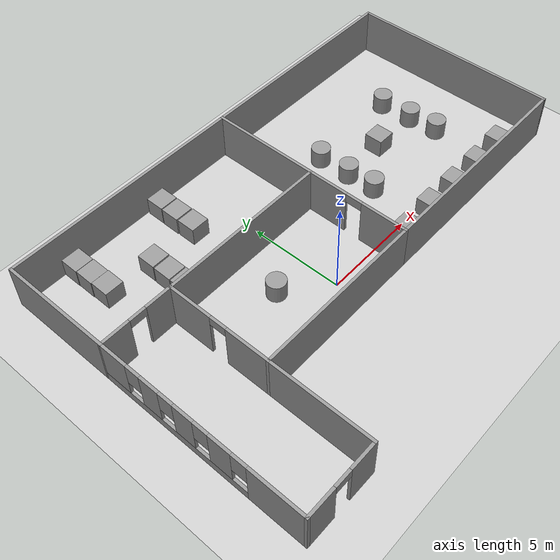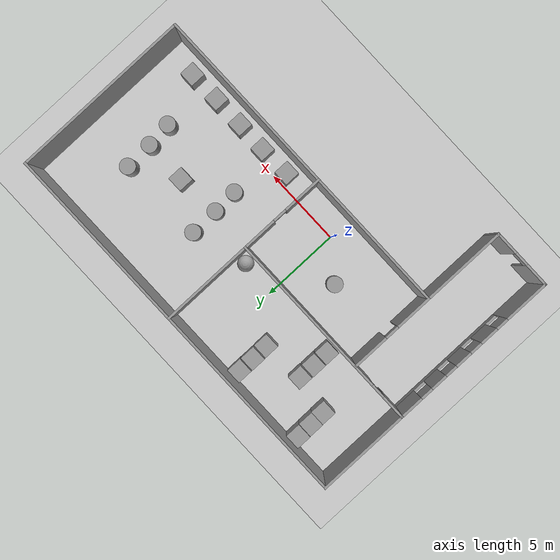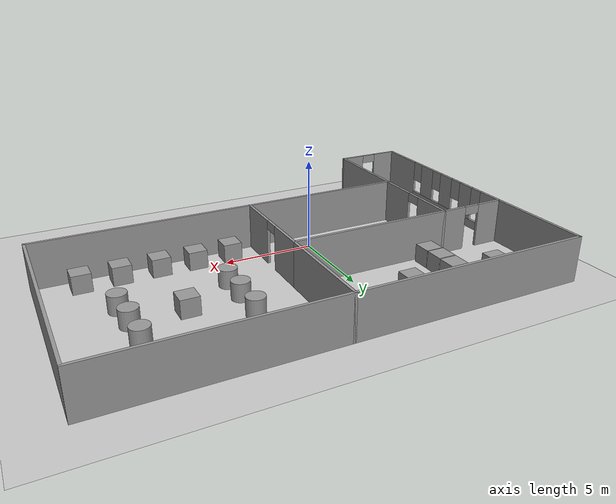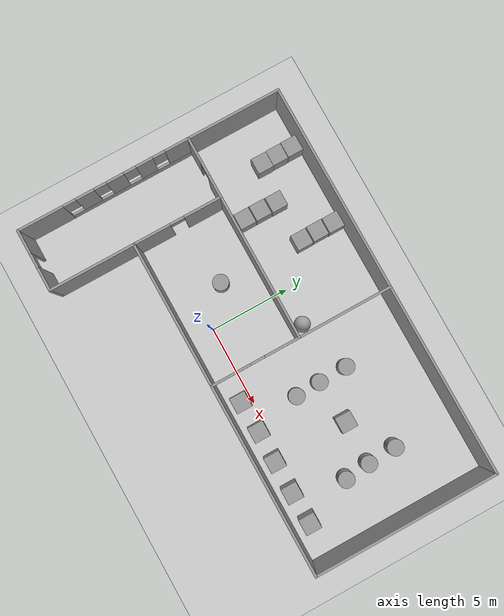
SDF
<sdf version="1.7">
 <world name="default">
  <light name="sun" type="directional">
   <pose>0 0 10 0 -0 0</pose>
   <diffuse>0.8 0.8 0.8 1</diffuse>
   <specular>0.2 0.2 0.2 1</specular>
   <attenuation>
    <range>1000</range>
    <constant>0.9</constant>
    <linear>0.01</linear>
    <quadratic>0.001</quadratic>
   </attenuation>
   <direction>-0.5 0.1 -0.9</direction>
   <spot><inner_angle>0</inner_angle><outer_angle>0</outer_angle><falloff>0</falloff></spot>
  </light>
  <model name="ground_plane">
   <static>1</static>
   <link name="link">
    <collision name="collision">
     <geometry><plane><normal>0 0 1</normal><size>100 100</size></plane></geometry>
     <surface>
      <contact><collide_bitmask>65535</collide_bitmask></contact>
      <friction><ode><mu>100</mu><mu2>50</mu2></ode></friction>
     </surface>
    </collision>
    <visual name="visual">
     <cast_shadows>0</cast_shadows>
     <geometry><plane><normal>0 0 1</normal><size>100 100</size></plane></geometry>
     <material>
      <script><uri>file://media/materials/scripts/gazebo.material</uri><name>Gazebo/Grey</name></script>
     </material>
    </visual>
   </link>
  </model>
  <gravity>0 0 -9.8</gravity>
  <magnetic_field>6e-06 2.3e-05 -4.2e-05</magnetic_field>
  <atmosphere type="adiabatic"/>
  <physics type="ode">
   <max_step_size>0.001</max_step_size>
   <real_time_factor>1</real_time_factor>
   <real_time_update_rate>1000</real_time_update_rate>
  </physics>
  <scene><ambient>0.4 0.4 0.4 1</ambient><background>0.7 0.7 0.7 1</background><shadows>1</shadows></scene>
  <spherical_coordinates>
   <surface_model>EARTH_WGS84</surface_model>
   <latitude_deg>0</latitude_deg>
   <longitude_deg>0</longitude_deg>
   <elevation>0</elevation>
   <heading_deg>0</heading_deg>
  </spherical_coordinates>
  <model name="house">
   <pose>2.35115 1.53042 0 0 -0 0</pose>
   <link name="Wall_0">
    <pose>-8.55 -0.25 0 0 -0 1.5708</pose>
    <visual name="Wall_0_Visual_0">
     <pose>-1.67204 0 1.25 0 -0 0</pose>
     <geometry><box><size>2.40592 0.15 2.5</size></box></geometry>
     <material>
      <script><uri>file://media/materials/scripts/gazebo.material</uri><name>Gazebo/Grey</name></script>
      <ambient>1 1 1 1</ambient>
     </material>
     <meta><layer>0</layer></meta>
    </visual>
    <collision name="Wall_0_Collision_0">
     <geometry><box><size>2.40592 0.15 2.5</size></box></geometry>
     <pose>-1.67204 0 1.25 0 -0 0</pose>
    </collision>
    <visual name="Wall_0_Visual_1">
     <pose>1.65296 0 1.25 0 -0 0</pose>
     <geometry><box><size>2.44408 0.15 2.5</size></box></geometry>
     <material>
      <script><uri>file://media/materials/scripts/gazebo.material</uri><name>Gazebo/Grey</name></script>
      <ambient>1 1 1 1</ambient>
     </material>
     <meta><layer>0</layer></meta>
    </visual>
    <collision name="Wall_0_Collision_1">
     <geometry><box><size>2.44408 0.15 2.5</size></box></geometry>
     <pose>1.65296 0 1.25 0 -0 0</pose>
    </collision>
    <visual name="Wall_0_Visual_2">
     <pose>-0.01908 0 2.25 0 -0 0</pose>
     <geometry><box><size>0.9 0.15 0.5</size></box></geometry>
     <material>
      <script><uri>file://media/materials/scripts/gazebo.material</uri><name>Gazebo/Grey</name></script>
      <ambient>1 1 1 1</ambient>
     </material>
     <meta><layer>0</layer></meta>
    </visual>
    <collision name="Wall_0_Collision_2">
     <geometry><box><size>0.9 0.15 0.5</size></box></geometry>
     <pose>-0.01908 0 2.25 0 -0 0</pose>
    </collision>
   </link>
   <link name="Wall_1">
    <collision name="Wall_1_Collision">
     <geometry><box><size>9.25 0.15 2.5</size></box></geometry>
     <pose>0 0 1.25 0 -0 0</pose>
    </collision>
    <visual name="Wall_1_Visual">
     <pose>0 0 1.25 0 -0 0</pose>
     <geometry><box><size>9.25 0.15 2.5</size></box></geometry>
     <material>
      <script><uri>file://media/materials/scripts/gazebo.material</uri><name>Gazebo/Grey</name></script>
      <ambient>1 1 1 1</ambient>
     </material>
     <meta><layer>0</layer></meta>
    </visual>
    <pose>-4 2.55 0 0 -0 0</pose>
   </link>
   <link name="Wall_11">
    <pose>-10.475 2.55 0 0 -0 3.14159</pose>
    <visual name="Wall_11_Visual_0">
     <pose>-1.25059 0 1.25 0 -0 0</pose>
     <geometry><box><size>1.49882 0.15 2.5</size></box></geometry>
     <material>
      <script><uri>file://media/materials/scripts/gazebo.material</uri><name>Gazebo/Grey</name></script>
      <ambient>1 1 1 1</ambient>
     </material>
     <meta><layer>0</layer></meta>
    </visual>
    <collision name="Wall_11_Collision_0">
     <geometry><box><size>1.49882 0.15 2.5</size></box></geometry>
     <pose>-1.25059 0 1.25 0 -0 0</pose>
    </collision>
    <visual name="Wall_11_Visual_1">
     <pose>1.19941 0 1.25 0 -0 0</pose>
     <geometry><box><size>1.60118 0.15 2.5</size></box></geometry>
     <material>
      <script><uri>file://media/materials/scripts/gazebo.material</uri><name>Gazebo/Grey</name></script>
      <ambient>1 1 1 1</ambient>
     </material>
     <meta><layer>0</layer></meta>
    </visual>
    <collision name="Wall_11_Collision_1">
     <geometry><box><size>1.60118 0.15 2.5</size></box></geometry>
     <pose>1.19941 0 1.25 0 -0 0</pose>
    </collision>
    <visual name="Wall_11_Visual_2">
     <pose>-0.051178 0 2.25 0 -0 0</pose>
     <geometry><box><size>0.9 0.15 0.5</size></box></geometry>
     <material>
      <script><uri>file://media/materials/scripts/gazebo.material</uri><name>Gazebo/Grey</name></script>
      <ambient>1 1 1 1</ambient>
     </material>
     <meta><layer>0</layer></meta>
    </visual>
    <collision name="Wall_11_Collision_2">
     <geometry><box><size>0.9 0.15 0.5</size></box></geometry>
     <pose>-0.051178 0 2.25 0 -0 0</pose>
    </collision>
   </link>
   <link name="Wall_14">
    <collision name="Wall_14_Collision">
     <geometry><box><size>6 0.15 2.5</size></box></geometry>
     <pose>0 0 1.25 0 -0 0</pose>
    </collision>
    <visual name="Wall_14_Visual">
     <pose>0 0 1.25 0 -0 0</pose>
     <geometry><box><size>6 0.15 2.5</size></box></geometry>
     <material>
      <script><uri>file://media/materials/scripts/gazebo.material</uri><name>Gazebo/Grey</name></script>
      <ambient>1 1 1 1</ambient>
     </material>
     <meta><layer>0</layer></meta>
    </visual>
    <pose>-12.4 5.475 0 0 -0 1.5708</pose>
   </link>
   <link name="Wall_17">
    <collision name="Wall_17_Collision">
     <geometry><box><size>6 0.15 2.5</size></box></geometry>
     <pose>0 0 1.25 0 -0 0</pose>
    </collision>
    <visual name="Wall_17_Visual">
     <pose>0 0 1.25 0 -0 0</pose>
     <geometry><box><size>6 0.15 2.5</size></box></geometry>
     <material>
      <script><uri>file://media/materials/scripts/gazebo.material</uri><name>Gazebo/Grey</name></script>
      <ambient>1 1 1 1</ambient>
     </material>
     <meta><layer>0</layer></meta>
    </visual>
    <pose>0.55 5.475 0 0 -0 1.5708</pose>
   </link>
   <link name="Wall_18">
    <collision name="Wall_18_Collision">
     <geometry><box><size>13.1 0.15 2.5</size></box></geometry>
     <pose>0 0 1.25 0 -0 0</pose>
    </collision>
    <visual name="Wall_18_Visual">
     <pose>0 0 1.25 0 -0 0</pose>
     <geometry><box><size>13.1 0.15 2.5</size></box></geometry>
     <material>
      <script><uri>file://media/materials/scripts/gazebo.material</uri><name>Gazebo/Grey</name></script>
      <ambient>1 1 1 1</ambient>
     </material>
     <meta><layer>0</layer></meta>
    </visual>
    <pose>-5.925 8.4 0 0 -0 3.14159</pose>
   </link>
   <link name="Wall_2">
    <pose>0.55 -0.25 0 0 -0 -1.5708</pose>
    <visual name="Wall_2_Visual_0">
     <pose>-1.73443 0 1.25 0 -0 0</pose>
     <geometry><box><size>2.28113 0.15 2.5</size></box></geometry>
     <material>
      <script><uri>file://media/materials/scripts/gazebo.material</uri><name>Gazebo/Grey</name></script>
      <ambient>1 1 1 1</ambient>
     </material>
     <meta><layer>0</layer></meta>
    </visual>
    <collision name="Wall_2_Collision_0">
     <geometry><box><size>2.28113 0.15 2.5</size></box></geometry>
     <pose>-1.73443 0 1.25 0 -0 0</pose>
    </collision>
    <visual name="Wall_2_Visual_1">
     <pose>1.59057 0 1.25 0 -0 0</pose>
     <geometry><box><size>2.56887 0.15 2.5</size></box></geometry>
     <material>
      <script><uri>file://media/materials/scripts/gazebo.material</uri><name>Gazebo/Grey</name></script>
      <ambient>1 1 1 1</ambient>
     </material>
     <meta><layer>0</layer></meta>
    </visual>
    <collision name="Wall_2_Collision_1">
     <geometry><box><size>2.56887 0.15 2.5</size></box></geometry>
     <pose>1.59057 0 1.25 0 -0 0</pose>
    </collision>
    <visual name="Wall_2_Visual_2">
     <pose>-0.143869 0 2.25 0 -0 0</pose>
     <geometry><box><size>0.9 0.15 0.5</size></box></geometry>
     <material>
      <script><uri>file://media/materials/scripts/gazebo.material</uri><name>Gazebo/Grey</name></script>
      <ambient>1 1 1 1</ambient>
     </material>
     <meta><layer>0</layer></meta>
    </visual>
    <collision name="Wall_2_Collision_2">
     <geometry><box><size>0.9 0.15 0.5</size></box></geometry>
     <pose>-0.143869 0 2.25 0 -0 0</pose>
    </collision>
   </link>
   <link name="Wall_20">
    <collision name="Wall_20_Collision">
     <geometry><box><size>12 0.15 2.5</size></box></geometry>
     <pose>0 0 1.25 0 -0 0</pose>
    </collision>
    <visual name="Wall_20_Visual">
     <pose>0 0 1.25 0 -0 0</pose>
     <geometry><box><size>12 0.15 2.5</size></box></geometry>
     <material>
      <script><uri>file://media/materials/scripts/gazebo.material</uri><name>Gazebo/Grey</name></script>
      <ambient>1 1 1 1</ambient>
     </material>
     <meta><layer>0</layer></meta>
    </visual>
    <pose>6.475 8.4 0 0 -0 0</pose>
   </link>
   <link name="Wall_23">
    <collision name="Wall_23_Collision">
     <geometry><box><size>12 0.15 2.5</size></box></geometry>
     <pose>0 0 1.25 0 -0 0</pose>
    </collision>
    <visual name="Wall_23_Visual">
     <pose>0 0 1.25 0 -0 0</pose>
     <geometry><box><size>12 0.15 2.5</size></box></geometry>
     <material>
      <script><uri>file://media/materials/scripts/gazebo.material</uri><name>Gazebo/Grey</name></script>
      <ambient>1 1 1 1</ambient>
     </material>
     <meta><layer>0</layer></meta>
    </visual>
    <pose>6.475 -3.05 0 0 -0 0</pose>
   </link>
   <link name="Wall_24">
    <collision name="Wall_24_Collision">
     <geometry><box><size>11.5 0.15 2.5</size></box></geometry>
     <pose>0 0 1.25 0 -0 0</pose>
    </collision>
    <visual name="Wall_24_Visual">
     <pose>0 0 1.25 0 -0 0</pose>
     <geometry><box><size>11.5 0.15 2.5</size></box></geometry>
     <material>
      <script><uri>file://media/materials/scripts/gazebo.material</uri><name>Gazebo/Grey</name></script>
      <ambient>1 1 1 1</ambient>
     </material>
     <meta><layer>0</layer></meta>
    </visual>
    <pose>12.4 2.625 0 0 -0 1.5708</pose>
   </link>
   <link name="Wall_3">
    <collision name="Wall_3_Collision">
     <geometry><box><size>9.25 0.15 2.5</size></box></geometry>
     <pose>0 0 1.25 0 -0 0</pose>
    </collision>
    <visual name="Wall_3_Visual">
     <pose>0 0 1.25 0 -0 0</pose>
     <geometry><box><size>9.25 0.15 2.5</size></box></geometry>
     <material>
      <script><uri>file://media/materials/scripts/gazebo.material</uri><name>Gazebo/Grey</name></script>
      <ambient>1 1 1 1</ambient>
     </material>
     <meta><layer>0</layer></meta>
    </visual>
    <pose>-4 -3.05 0 0 -0 3.14159</pose>
   </link>
   <link name="Wall_6">
    <collision name="Wall_6_Collision">
     <geometry><box><size>5.5 0.15 2.5</size></box></geometry>
     <pose>0 0 1.25 0 -0 0</pose>
    </collision>
    <visual name="Wall_6_Visual">
     <pose>0 0 1.25 0 -0 0</pose>
     <geometry><box><size>5.5 0.15 2.5</size></box></geometry>
     <material>
      <script><uri>file://media/materials/scripts/gazebo.material</uri><name>Gazebo/Grey</name></script>
      <ambient>1 1 1 1</ambient>
     </material>
     <meta><layer>0</layer></meta>
    </visual>
    <pose>-8.55 -5.725 0 0 -0 -1.5708</pose>
   </link>
   <link name="Wall_7">
    <pose>-10.475 -8.4 0 0 -0 3.14159</pose>
    <visual name="Wall_7_Visual_0">
     <pose>-1.23824 0 1.25 0 -0 0</pose>
     <geometry><box><size>1.52352 0.15 2.5</size></box></geometry>
     <material>
      <script><uri>file://media/materials/scripts/gazebo.material</uri><name>Gazebo/Grey</name></script>
      <ambient>1 1 1 1</ambient>
     </material>
     <meta><layer>0</layer></meta>
    </visual>
    <collision name="Wall_7_Collision_0">
     <geometry><box><size>1.52352 0.15 2.5</size></box></geometry>
     <pose>-1.23824 0 1.25 0 -0 0</pose>
    </collision>
    <visual name="Wall_7_Visual_1">
     <pose>1.21176 0 1.25 0 -0 0</pose>
     <geometry><box><size>1.57648 0.15 2.5</size></box></geometry>
     <material>
      <script><uri>file://media/materials/scripts/gazebo.material</uri><name>Gazebo/Grey</name></script>
      <ambient>1 1 1 1</ambient>
     </material>
     <meta><layer>0</layer></meta>
    </visual>
    <collision name="Wall_7_Collision_1">
     <geometry><box><size>1.57648 0.15 2.5</size></box></geometry>
     <pose>1.21176 0 1.25 0 -0 0</pose>
    </collision>
    <visual name="Wall_7_Visual_2">
     <pose>-0.026484 0 2.25 0 -0 0</pose>
     <geometry><box><size>0.9 0.15 0.5</size></box></geometry>
     <material>
      <script><uri>file://media/materials/scripts/gazebo.material</uri><name>Gazebo/Grey</name></script>
      <ambient>1 1 1 1</ambient>
     </material>
     <meta><layer>0</layer></meta>
    </visual>
    <collision name="Wall_7_Collision_2">
     <geometry><box><size>0.9 0.15 0.5</size></box></geometry>
     <pose>-0.026484 0 2.25 0 -0 0</pose>
    </collision>
   </link>
   <link name="Wall_9">
    <pose>-12.4 -2.975 0 0 -0 1.5708</pose>
    <visual name="Wall_9_Visual_0">
     <pose>-4.02416 0 1.25 0 -0 0</pose>
     <geometry><box><size>2.95168 0.15 2.5</size></box></geometry>
     <material>
      <script><uri>file://media/materials/scripts/gazebo.material</uri><name>Gazebo/Grey</name></script>
      <ambient>1 1 1 1</ambient>
     </material>
     <meta><layer>0</layer></meta>
    </visual>
    <collision name="Wall_9_Collision_0">
     <geometry><box><size>2.95168 0.15 2.5</size></box></geometry>
     <pose>-4.02416 0 1.25 0 -0 0</pose>
    </collision>
    <visual name="Wall_9_Visual_1">
     <pose>1.47584 0 0.25 0 -0 0</pose>
     <geometry><box><size>8.04832 0.15 0.5</size></box></geometry>
     <material>
      <script><uri>file://media/materials/scripts/gazebo.material</uri><name>Gazebo/Grey</name></script>
      <ambient>1 1 1 1</ambient>
     </material>
     <meta><layer>0</layer></meta>
    </visual>
    <collision name="Wall_9_Collision_1">
     <geometry><box><size>8.04832 0.15 0.5</size></box></geometry>
     <pose>1.47584 0 0.25 0 -0 0</pose>
    </collision>
    <visual name="Wall_9_Visual_2">
     <pose>-1.15299 0 1.5 0 -0 0</pose>
     <geometry><box><size>1.19065 0.15 2</size></box></geometry>
     <material>
      <script><uri>file://media/materials/scripts/gazebo.material</uri><name>Gazebo/Grey</name></script>
      <ambient>1 1 1 1</ambient>
     </material>
     <meta><layer>0</layer></meta>
    </visual>
    <collision name="Wall_9_Collision_2">
     <geometry><box><size>1.19065 0.15 2</size></box></geometry>
     <pose>-1.15299 0 1.5 0 -0 0</pose>
    </collision>
    <visual name="Wall_9_Visual_3">
     <pose>0.792157 0 1.5 0 -0 0</pose>
     <geometry><box><size>1.09965 0.15 2</size></box></geometry>
     <material>
      <script><uri>file://media/materials/scripts/gazebo.material</uri><name>Gazebo/Grey</name></script>
      <ambient>1 1 1 1</ambient>
     </material>
     <meta><layer>0</layer></meta>
    </visual>
    <collision name="Wall_9_Collision_3">
     <geometry><box><size>1.09965 0.15 2</size></box></geometry>
     <pose>0.792157 0 1.5 0 -0 0</pose>
    </collision>
    <visual name="Wall_9_Visual_4">
     <pose>2.67571 0 1.5 0 -0 0</pose>
     <geometry><box><size>1.06745 0.15 2</size></box></geometry>
     <material>
      <script><uri>file://media/materials/scripts/gazebo.material</uri><name>Gazebo/Grey</name></script>
      <ambient>1 1 1 1</ambient>
     </material>
     <meta><layer>0</layer></meta>
    </visual>
    <collision name="Wall_9_Collision_4">
     <geometry><box><size>1.06745 0.15 2</size></box></geometry>
     <pose>2.67571 0 1.5 0 -0 0</pose>
    </collision>
    <visual name="Wall_9_Visual_5">
     <pose>4.75472 0 1.5 0 -0 0</pose>
     <geometry><box><size>1.49057 0.15 2</size></box></geometry>
     <material>
      <script><uri>file://media/materials/scripts/gazebo.material</uri><name>Gazebo/Grey</name></script>
      <ambient>1 1 1 1</ambient>
     </material>
     <meta><layer>0</layer></meta>
    </visual>
    <collision name="Wall_9_Collision_5">
     <geometry><box><size>1.49057 0.15 2</size></box></geometry>
     <pose>4.75472 0 1.5 0 -0 0</pose>
    </collision>
    <visual name="Wall_9_Visual_6">
     <pose>-2.14832 0 1.9 0 -0 0</pose>
     <geometry><box><size>0.8 0.15 1.2</size></box></geometry>
     <material>
      <script><uri>file://media/materials/scripts/gazebo.material</uri><name>Gazebo/Grey</name></script>
      <ambient>1 1 1 1</ambient>
     </material>
     <meta><layer>0</layer></meta>
    </visual>
    <collision name="Wall_9_Collision_6">
     <geometry><box><size>0.8 0.15 1.2</size></box></geometry>
     <pose>-2.14832 0 1.9 0 -0 0</pose>
    </collision>
    <visual name="Wall_9_Visual_7">
     <pose>-0.15767 0 1.9 0 -0 0</pose>
     <geometry><box><size>0.8 0.15 1.2</size></box></geometry>
     <material>
      <script><uri>file://media/materials/scripts/gazebo.material</uri><name>Gazebo/Grey</name></script>
      <ambient>1 1 1 1</ambient>
     </material>
     <meta><layer>0</layer></meta>
    </visual>
    <collision name="Wall_9_Collision_7">
     <geometry><box><size>0.8 0.15 1.2</size></box></geometry>
     <pose>-0.15767 0 1.9 0 -0 0</pose>
    </collision>
    <visual name="Wall_9_Visual_8">
     <pose>1.74198 0 1.9 0 -0 0</pose>
     <geometry><box><size>0.8 0.15 1.2</size></box></geometry>
     <material>
      <script><uri>file://media/materials/scripts/gazebo.material</uri><name>Gazebo/Grey</name></script>
      <ambient>1 1 1 1</ambient>
     </material>
     <meta><layer>0</layer></meta>
    </visual>
    <collision name="Wall_9_Collision_8">
     <geometry><box><size>0.8 0.15 1.2</size></box></geometry>
     <pose>1.74198 0 1.9 0 -0 0</pose>
    </collision>
    <visual name="Wall_9_Visual_9">
     <pose>3.60943 0 1.9 0 -0 0</pose>
     <geometry><box><size>0.8 0.15 1.2</size></box></geometry>
     <material>
      <script><uri>file://media/materials/scripts/gazebo.material</uri><name>Gazebo/Grey</name></script>
      <ambient>1 1 1 1</ambient>
     </material>
     <meta><layer>0</layer></meta>
    </visual>
    <collision name="Wall_9_Collision_9">
     <geometry><box><size>0.8 0.15 1.2</size></box></geometry>
     <pose>3.60943 0 1.9 0 -0 0</pose>
    </collision>
   </link>
   <static>1</static>
  </model>
  <model name="unit_box">
   <pose>8.49007 4.18772 0.5 -0 -0 -0</pose>
   <link name="link">
    <inertial>
     <mass>1</mass>
     <inertia>
      <ixx>0.166667</ixx>
      <ixy>0</ixy>
      <ixz>0</ixz>
      <iyy>0.166667</iyy>
      <iyz>0</iyz>
      <izz>0.166667</izz>
     </inertia>
    </inertial>
    <collision name="collision"><geometry><box><size>1 0.999999 1</size></box></geometry></collision>
    <visual name="visual">
     <geometry><box><size>1 0.999999 1</size></box></geometry>
     <material>
      <script><name>Gazebo/Grey</name><uri>file://media/materials/scripts/gazebo.material</uri></script>
     </material>
    </visual>
   </link>
  </model>
  <model name="unit_cylinder">
   <pose>11.2084 4.16507 0.499991 -0 -0 -4e-06</pose>
   <link name="link">
    <inertial>
     <mass>1</mass>
     <inertia><ixx>0.145833</ixx><ixy>0</ixy><ixz>0</ixz><iyy>0.145833</iyy><iyz>0</iyz><izz>0.125</izz></inertia>
    </inertial>
    <collision name="collision">
     <geometry><cylinder><radius>0.5</radius><length>1</length></cylinder></geometry>
    </collision>
    <visual name="visual">
     <geometry><cylinder><radius>0.5</radius><length>1</length></cylinder></geometry>
     <material>
      <script><name>Gazebo/Grey</name><uri>file://media/materials/scripts/gazebo.material</uri></script>
     </material>
    </visual>
   </link>
  </model>
  <model name="unit_cylinder_clone">
   <pose>11.1405 5.95895 0.499991 -0 -0 -1.9e-05</pose>
   <link name="link">
    <inertial>
     <mass>1</mass>
     <inertia><ixx>0.145833</ixx><ixy>0</ixy><ixz>0</ixz><iyy>0.145833</iyy><iyz>0</iyz><izz>0.125</izz></inertia>
    </inertial>
    <collision name="collision">
     <geometry><cylinder><radius>0.5</radius><length>1</length></cylinder></geometry>
    </collision>
    <visual name="visual">
     <geometry><cylinder><radius>0.5</radius><length>1</length></cylinder></geometry>
     <material>
      <script><name>Gazebo/Grey</name><uri>file://media/materials/scripts/gazebo.material</uri></script>
     </material>
    </visual>
   </link>
  </model>
  <model name="unit_cylinder_clone_0">
   <pose>11.3643 2.58069 0.499991 -0 -0 -2.7e-05</pose>
   <link name="link">
    <inertial>
     <mass>1</mass>
     <inertia><ixx>0.145833</ixx><ixy>0</ixy><ixz>0</ixz><iyy>0.145833</iyy><iyz>0</iyz><izz>0.125</izz></inertia>
    </inertial>
    <collision name="collision">
     <geometry><cylinder><radius>0.5</radius><length>1</length></cylinder></geometry>
    </collision>
    <visual name="visual">
     <geometry><cylinder><radius>0.5</radius><length>1</length></cylinder></geometry>
     <material>
      <script><name>Gazebo/Grey</name><uri>file://media/materials/scripts/gazebo.material</uri></script>
     </material>
    </visual>
   </link>
  </model>
  <model name="unit_cylinder_clone_clone">
   <pose>5.71378 5.77464 0.5 0 0 -1e-06</pose>
   <link name="link">
    <inertial>
     <mass>1</mass>
     <inertia><ixx>0.145833</ixx><ixy>0</ixy><ixz>0</ixz><iyy>0.145833</iyy><iyz>0</iyz><izz>0.125</izz></inertia>
    </inertial>
    <collision name="collision">
     <geometry><cylinder><radius>0.5</radius><length>1</length></cylinder></geometry>
    </collision>
    <visual name="visual">
     <geometry><cylinder><radius>0.5</radius><length>1</length></cylinder></geometry>
     <material>
      <script><name>Gazebo/Grey</name><uri>file://media/materials/scripts/gazebo.material</uri></script>
     </material>
    </visual>
   </link>
  </model>
  <model name="unit_cylinder_clone_clone_clone">
   <pose>5.74248 3.97572 0.499991 -0 -0 -0</pose>
   <link name="link">
    <inertial>
     <mass>1</mass>
     <inertia><ixx>0.145833</ixx><ixy>0</ixy><ixz>0</ixz><iyy>0.145833</iyy><iyz>0</iyz><izz>0.125</izz></inertia>
    </inertial>
    <collision name="collision">
     <geometry><cylinder><radius>0.5</radius><length>1</length></cylinder></geometry>
    </collision>
    <visual name="visual">
     <geometry><cylinder><radius>0.5</radius><length>1</length></cylinder></geometry>
     <material>
      <script><name>Gazebo/Grey</name><uri>file://media/materials/scripts/gazebo.material</uri></script>
     </material>
    </visual>
   </link>
  </model>
  <model name="unit_cylinder_clone_clone_clone_clone">
   <pose>5.80625 2.40757 0.5 0 -0 0</pose>
   <link name="link">
    <inertial>
     <mass>1</mass>
     <inertia><ixx>0.145833</ixx><ixy>0</ixy><ixz>0</ixz><iyy>0.145833</iyy><iyz>0</iyz><izz>0.125</izz></inertia>
    </inertial>
    <collision name="collision">
     <geometry><cylinder><radius>0.5</radius><length>1</length></cylinder></geometry>
    </collision>
    <visual name="visual">
     <geometry><cylinder><radius>0.5</radius><length>1</length></cylinder></geometry>
     <material>
      <script><name>Gazebo/Grey</name><uri>file://media/materials/scripts/gazebo.material</uri></script>
     </material>
    </visual>
   </link>
  </model>
  <model name="unit_box_0">
   <pose>4.54207 -0.608643 0.5 0 -0 0</pose>
   <link name="link">
    <inertial>
     <mass>1</mass>
     <inertia>
      <ixx>0.166667</ixx>
      <ixy>0</ixy>
      <ixz>0</ixz>
      <iyy>0.166667</iyy>
      <iyz>0</iyz>
      <izz>0.166667</izz>
     </inertia>
    </inertial>
    <collision name="collision"><geometry><box><size>1 1 1</size></box></geometry></collision>
    <visual name="visual">
     <geometry><box><size>1 1 1</size></box></geometry>
     <material>
      <script><name>Gazebo/Grey</name><uri>file://media/materials/scripts/gazebo.material</uri></script>
     </material>
    </visual>
   </link>
  </model>
  <model name="unit_box_1">
   <pose>6.5293 -0.513107 0.5 0 -0 0</pose>
   <link name="link">
    <inertial>
     <mass>1</mass>
     <inertia>
      <ixx>0.166667</ixx>
      <ixy>0</ixy>
      <ixz>0</ixz>
      <iyy>0.166667</iyy>
      <iyz>0</iyz>
      <izz>0.166667</izz>
     </inertia>
    </inertial>
    <collision name="collision"><geometry><box><size>1 1 1</size></box></geometry></collision>
    <visual name="visual">
     <geometry><box><size>1 1 1</size></box></geometry>
     <material>
      <script><name>Gazebo/Grey</name><uri>file://media/materials/scripts/gazebo.material</uri></script>
     </material>
    </visual>
   </link>
  </model>
  <model name="unit_box_2">
   <pose>8.49106 -0.533717 0.5 0 -0 0</pose>
   <link name="link">
    <inertial>
     <mass>1</mass>
     <inertia>
      <ixx>0.166667</ixx>
      <ixy>0</ixy>
      <ixz>0</ixz>
      <iyy>0.166667</iyy>
      <iyz>0</iyz>
      <izz>0.166667</izz>
     </inertia>
    </inertial>
    <collision name="collision"><geometry><box><size>1 1 1</size></box></geometry></collision>
    <visual name="visual">
     <geometry><box><size>1 1 1</size></box></geometry>
     <material>
      <script><name>Gazebo/Grey</name><uri>file://media/materials/scripts/gazebo.material</uri></script>
     </material>
    </visual>
   </link>
  </model>
  <model name="unit_box_3">
   <pose>10.5181 -0.530139 0.5 -0 -0 -0</pose>
   <link name="link">
    <inertial>
     <mass>1</mass>
     <inertia>
      <ixx>0.166667</ixx>
      <ixy>0</ixy>
      <ixz>0</ixz>
      <iyy>0.166667</iyy>
      <iyz>0</iyz>
      <izz>0.166667</izz>
     </inertia>
    </inertial>
    <collision name="collision"><geometry><box><size>1 1 1</size></box></geometry></collision>
    <visual name="visual">
     <geometry><box><size>1 1 1</size></box></geometry>
     <material>
      <script><name>Gazebo/Grey</name><uri>file://media/materials/scripts/gazebo.material</uri></script>
     </material>
    </visual>
   </link>
  </model>
  <model name="unit_box_4">
   <pose>12.5231 -0.480673 0.5 -0 -0 -0</pose>
   <link name="link">
    <inertial>
     <mass>1</mass>
     <inertia>
      <ixx>0.166667</ixx>
      <ixy>0</ixy>
      <ixz>0</ixz>
      <iyy>0.166667</iyy>
      <iyz>0</iyz>
      <izz>0.166667</izz>
     </inertia>
    </inertial>
    <collision name="collision"><geometry><box><size>1 1 1</size></box></geometry></collision>
    <visual name="visual">
     <geometry><box><size>1 1 1</size></box></geometry>
     <material>
      <script><name>Gazebo/Grey</name><uri>file://media/materials/scripts/gazebo.material</uri></script>
     </material>
    </visual>
   </link>
  </model>
  <model name="unit_cylinder_0">
   <pose>-2.15575 1.74769 0.499999 0 -0 0</pose>
   <link name="link">
    <inertial>
     <mass>1</mass>
     <inertia><ixx>0.145833</ixx><ixy>0</ixy><ixz>0</ixz><iyy>0.145833</iyy><iyz>0</iyz><izz>0.125</izz></inertia>
    </inertial>
    <collision name="collision">
     <geometry><cylinder><radius>0.500001</radius><length>0.999999</length></cylinder></geometry>
    </collision>
    <visual name="visual">
     <geometry><cylinder><radius>0.500001</radius><length>0.999999</length></cylinder></geometry>
     <material>
      <script><name>Gazebo/Grey</name><uri>file://media/materials/scripts/gazebo.material</uri></script>
     </material>
    </visual>
   </link>
  </model>
  <model name="unit_box_5">
   <pose>-7.23369 9.35532 0.5 0 -0 0.000155</pose>
   <link name="link">
    <inertial>
     <mass>1</mass>
     <inertia>
      <ixx>0.166667</ixx>
      <ixy>0</ixy>
      <ixz>0</ixz>
      <iyy>0.166667</iyy>
      <iyz>0</iyz>
      <izz>0.166667</izz>
     </inertia>
    </inertial>
    <collision name="collision"><geometry><box><size>1 1 1</size></box></geometry></collision>
    <visual name="visual">
     <geometry><box><size>1 1 1</size></box></geometry>
     <material>
      <script><name>Gazebo/Grey</name><uri>file://media/materials/scripts/gazebo.material</uri></script>
     </material>
    </visual>
   </link>
  </model>
  <model name="unit_box_6">
   <pose>-7.21793 8.33751 0.499995 -1e-05 -0 -0.007146</pose>
   <link name="link">
    <inertial>
     <mass>1</mass>
     <inertia>
      <ixx>0.166667</ixx>
      <ixy>0</ixy>
      <ixz>0</ixz>
      <iyy>0.166667</iyy>
      <iyz>0</iyz>
      <izz>0.166667</izz>
     </inertia>
    </inertial>
    <collision name="collision"><geometry><box><size>1 1 1</size></box></geometry></collision>
    <visual name="visual">
     <geometry><box><size>1 1 1</size></box></geometry>
     <material>
      <script><name>Gazebo/Grey</name><uri>file://media/materials/scripts/gazebo.material</uri></script>
     </material>
    </visual>
   </link>
  </model>
  <model name="unit_box_7">
   <pose>-7.19851 7.33705 0.5 0 -0 -0.007101</pose>
   <link name="link">
    <inertial>
     <mass>1</mass>
     <inertia>
      <ixx>0.166667</ixx>
      <ixy>0</ixy>
      <ixz>0</ixz>
      <iyy>0.166667</iyy>
      <iyz>0</iyz>
      <izz>0.166667</izz>
     </inertia>
    </inertial>
    <collision name="collision"><geometry><box><size>1 1 1</size></box></geometry></collision>
    <visual name="visual">
     <geometry><box><size>1 1 1</size></box></geometry>
     <material>
      <script><name>Gazebo/Grey</name><uri>file://media/materials/scripts/gazebo.material</uri></script>
     </material>
    </visual>
   </link>
  </model>
  <model name="unit_box_8">
   <pose>-4.78326 4.81569 0.5 0 -0 2e-06</pose>
   <link name="link">
    <inertial>
     <mass>1</mass>
     <inertia>
      <ixx>0.166667</ixx>
      <ixy>0</ixy>
      <ixz>0</ixz>
      <iyy>0.166667</iyy>
      <iyz>0</iyz>
      <izz>0.166667</izz>
     </inertia>
    </inertial>
    <collision name="collision"><geometry><box><size>1 1 1</size></box></geometry></collision>
    <visual name="visual">
     <geometry><box><size>1 1 1</size></box></geometry>
     <material>
      <script><name>Gazebo/Grey</name><uri>file://media/materials/scripts/gazebo.material</uri></script>
     </material>
    </visual>
   </link>
  </model>
  <model name="unit_box_9">
   <pose>-4.78571 5.86752 0.5 0 -0 0</pose>
   <link name="link">
    <inertial>
     <mass>1</mass>
     <inertia>
      <ixx>0.166667</ixx>
      <ixy>0</ixy>
      <ixz>0</ixz>
      <iyy>0.166667</iyy>
      <iyz>0</iyz>
      <izz>0.166667</izz>
     </inertia>
    </inertial>
    <collision name="collision"><geometry><box><size>1 1 1</size></box></geometry></collision>
    <visual name="visual">
     <geometry><box><size>1 1 1</size></box></geometry>
     <material>
      <script><name>Gazebo/Grey</name><uri>file://media/materials/scripts/gazebo.material</uri></script>
     </material>
    </visual>
   </link>
  </model>
  <model name="unit_box_10">
   <pose>-4.77535 6.93849 0.5 0 -0 1e-06</pose>
   <link name="link">
    <inertial>
     <mass>1</mass>
     <inertia>
      <ixx>0.166667</ixx>
      <ixy>0</ixy>
      <ixz>0</ixz>
      <iyy>0.166667</iyy>
      <iyz>0</iyz>
      <izz>0.166667</izz>
     </inertia>
    </inertial>
    <collision name="collision"><geometry><box><size>1 1 1</size></box></geometry></collision>
    <visual name="visual">
     <geometry><box><size>1 1 1</size></box></geometry>
     <material>
      <script><name>Gazebo/Grey</name><uri>file://media/materials/scripts/gazebo.material</uri></script>
     </material>
    </visual>
   </link>
  </model>
  <model name="unit_box_11">
   <pose>-2.07578 9.27336 0.5 0 -0 0</pose>
   <link name="link">
    <inertial>
     <mass>1</mass>
     <inertia>
      <ixx>0.166667</ixx>
      <ixy>0</ixy>
      <ixz>0</ixz>
      <iyy>0.166667</iyy>
      <iyz>0</iyz>
      <izz>0.166667</izz>
     </inertia>
    </inertial>
    <collision name="collision"><geometry><box><size>1 1 1</size></box></geometry></collision>
    <visual name="visual">
     <geometry><box><size>1 1 1</size></box></geometry>
     <material>
      <script><name>Gazebo/Grey</name><uri>file://media/materials/scripts/gazebo.material</uri></script>
     </material>
    </visual>
   </link>
  </model>
  <model name="unit_box_12">
   <pose>-2.0859 8.22036 0.5 0 -0 0</pose>
   <link name="link">
    <inertial>
     <mass>1</mass>
     <inertia>
      <ixx>0.166667</ixx>
      <ixy>0</ixy>
      <ixz>0</ixz>
      <iyy>0.166667</iyy>
      <iyz>0</iyz>
      <izz>0.166667</izz>
     </inertia>
    </inertial>
    <collision name="collision"><geometry><box><size>1 1 1</size></box></geometry></collision>
    <visual name="visual">
     <geometry><box><size>1 1 1</size></box></geometry>
     <material>
      <script><name>Gazebo/Grey</name><uri>file://media/materials/scripts/gazebo.material</uri></script>
     </material>
    </visual>
   </link>
  </model>
  <model name="unit_box_13">
   <pose>-2.06423 7.15231 0.5 0 -0 0</pose>
   <link name="link">
    <inertial>
     <mass>1</mass>
     <inertia>
      <ixx>0.166667</ixx>
      <ixy>0</ixy>
      <ixz>0</ixz>
      <iyy>0.166667</iyy>
      <iyz>0</iyz>
      <izz>0.166667</izz>
     </inertia>
    </inertial>
    <collision name="collision"><geometry><box><size>1 1 1</size></box></geometry></collision>
    <visual name="visual">
     <geometry><box><size>1 1 1</size></box></geometry>
     <material>
      <script><name>Gazebo/Grey</name><uri>file://media/materials/scripts/gazebo.material</uri></script>
     </material>
    </visual>
   </link>
  </model>
  <model name="unit_sphere">
   <pose>2.29834 4.77146 0.5 0 -0 0</pose>
   <link name="link">
    <inertial>
     <mass>1</mass>
     <inertia><ixx>0.1</ixx><ixy>0</ixy><ixz>0</ixz><iyy>0.1</iyy><iyz>0</iyz><izz>0.1</izz></inertia>
    </inertial>
    <collision name="collision"><geometry><sphere><radius>0.5</radius></sphere></geometry></collision>
    <visual name="visual">
     <geometry><sphere><radius>0.5</radius></sphere></geometry>
     <material>
      <script><name>Gazebo/Grey</name><uri>file://media/materials/scripts/gazebo.material</uri></script>
     </material>
    </visual>
   </link>
  </model>
 </world>
</sdf>
